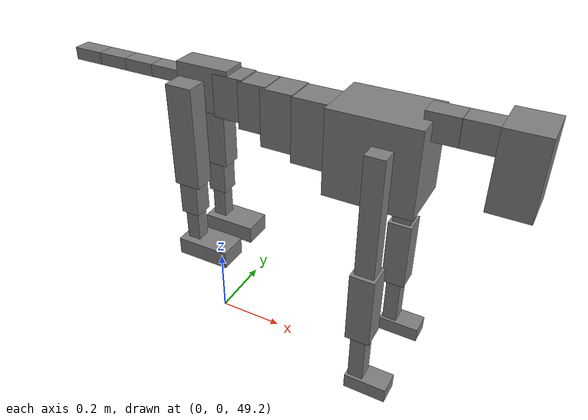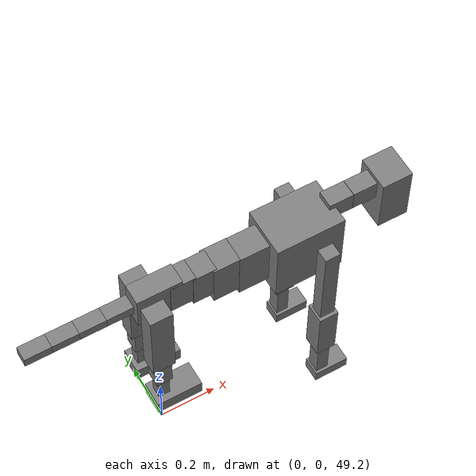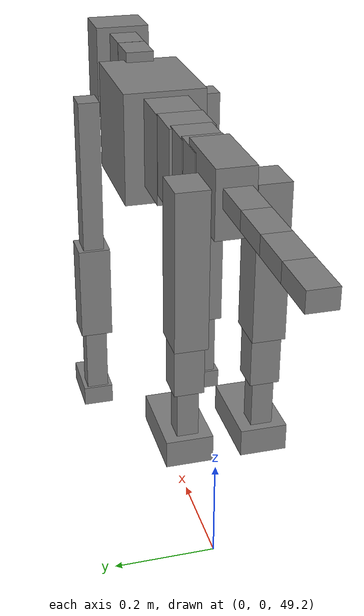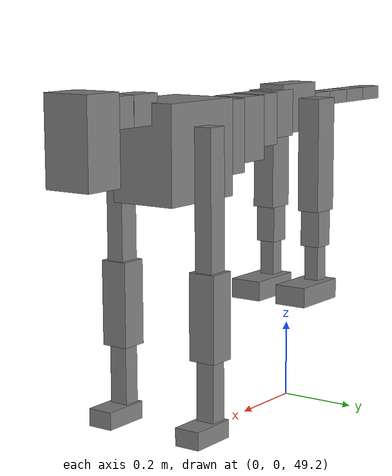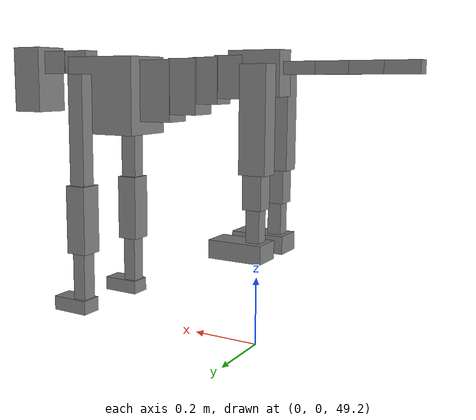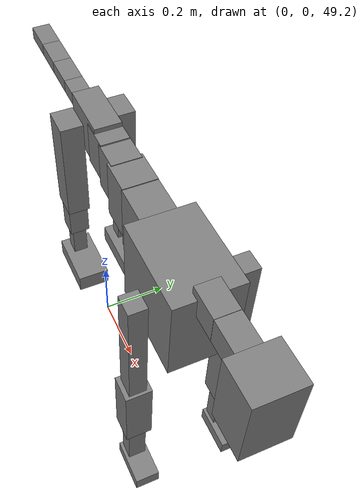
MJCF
<mujoco model="dog">

    <default>
        <joint armature="0.02" stiffness="1" damping="0.2" limited="true"/>
        <geom condim="3" friction="1 0.05 0.05" margin="0.01"/>
        <motor ctrllimited="true" ctrlrange="-1.0 1.0" forcelimited="true" gear="50"/>
    </default>

    <compiler inertiafromgeom="true" angle="radian"/>

    <option timestep="0.016" iterations="50" tolerance="1e-10" solver="Newton" jacobian="dense" cone="pyramidal"/>

    <size nconmax="20000" njmax="60000" nstack="5000000"/>
    <visual>
        <map force="0.1" zfar="30"/>
        <rgba haze="0.15 0.25 0.35 1"/>
        <quality shadowsize="2048"/>
        <global offwidth="800" offheight="800"/>
    </visual>

    <asset>
        <texture type="skybox" builtin="gradient" rgb1="0.3 0.5 0.7" rgb2="0 0 0" width="512" height="512"/>
        <texture name="texplane" type="2d" builtin="checker" rgb1=".2 .3 .4" rgb2=".1 0.15 0.2" width="512" height="512"
                 mark="cross" markrgb=".8 .8 .8"/>
        <texture name="texgeom" type="cube" builtin="flat" mark="cross" width="127" height="1278" rgb1="0.8 0.6 0.4"
                 rgb2="0.8 0.6 0.4" markrgb="1 1 1" random="0.01"/>

        <material name="matplane" reflectance="0.3" texture="texplane" texrepeat="1 1" texuniform="true"/>
        <material name="matgeom" texture="texgeom" texuniform="true" rgba="0.8 0.6 .4 1"/>
    </asset>

    <worldbody>
        <geom name="floor" pos="0 0 0" size="0 0 .25" type="plane" material="matplane" condim="3"/>

        <light directional="false" diffuse=".2 .2 .2" specular="0 0 0" pos="0 0 5" dir="0 0 -1" castshadow="false"/>
        <light mode="targetbodycom" target="torso" directional="false" diffuse=".8 .8 .8" specular="0.3 0.3 0.3"
               pos="0 0 4.0" dir="0 0 -1"/>

        <body name="root" pos="0 0 50">
            <freejoint name="root_1"/>
            <geom type="box" pos="0 0 -0.02" size="0.0774  0.0358  0.063" density="2030"/>

            <body name="spine1" pos="0.054 0 0">
                <joint name="spine1_y" axis="0 1 0" range="0 0.7" limited="true"/>
                <geom type="box" pos="0.02375 0 -0.03" size="0.04375  0.0375  0.05985" density="2030"/>

                <body name="spine2" pos="0.0612 0 0">
                    <joint name="spine2_y" axis="0 1 0" range="-0.15 0.15" limited="true"/>
                    <geom type="box" pos="0.03555  0  -0.04" size="0.04055  0.039  0.06615" density="2030"/>

                    <body name="spine3" pos="0.0730 0 0">
                        <joint name="spine3_y" axis="0 1 0" range="-0.15 0.15" limited="true"/>
                        <geom type="box" pos="0.03555  0  -0.057" size="0.04555  0.0445  0.081" density="2030"/>

                        <body name="spine4" pos="0.0780 0 0">
                            <joint name="spine4_y" axis="0 1 0" range="-0.15 0.15" limited="true"/>
                            <geom type="box" pos="0.05265  0  -0.07" size="0.05265  0.045  0.09135" density="2030"/>

                            <body name="torso" pos="0.1082 0 0">
                                <joint name="torso_y" axis="0 1 0" range="-0.15 0.15" limited="true"/>
                                <geom type="box" pos="0.11925  0  -0.085" size="0.11925  0.085  0.11745"
                                      density="2030"/>

                                <body name="neck1" pos="0.2160  0   0.0180">
                                    <joint name="neck1_y" axis="0 1 0" range="-1.2  -1" limited="true"/>
                                    <geom type="box" pos="0.0423  0  0" size="0.0423  0.03  0.036" density="2325"/>

                                    <body name="neck2" pos="0.0853  0  0">
                                        <joint name="neck2_y" axis="0 1 0" range="0.1  0" limited="true"/>
                                        <geom type="box" pos="0.0423  0  0" size="0.0423  0.03  0.036" density="2325"/>

                                        <body name="head" pos="0.0853  0  0">
                                            <joint name="head_y" axis="0 1 0" range="-0.3  -0.2" limited="true"/>
                                            <geom type="box" pos="0.0531  0  -0.055" size="0.0531  0.06  0.1044"
                                                  density="4030"/>

                                        </body>
                                    </body>
                                </body>

                                <body name="front_shoulder" pos="0.156  0   -0.0480">
                                    <joint name="front_shoulder_y" axis="0 1 0" range="-1 1.5" limited="true"/>
                                    <geom type="box" pos="0 0.13 -0.1540" size="0.0265  0.0226  0.1807" density="1158"/>
                                    <geom type="box" pos="0 -0.13 -0.1540" size="0.0265  0.0226  0.1807"
                                          density="1158"/>

                                    <body name="front_elbow" pos="0  0  -0.3081">
                                        <joint name="front_elbow_y" axis="0 1 0" range="-2 0" limited="true"/>
                                        <geom type="box" pos="0 0.13 -0.1047" size="0.0339  0.0346  0.1047"
                                              density="1081"/>
                                        <geom type="box" pos="0 -0.13 -0.1047" size="0.0339  0.0346  0.1047"
                                              density="1081"/>

                                        <body name="front_wrist" pos="0  0  -0.2094">
                                            <joint name="front_wrist_y" axis="0 1 0" range="-0.2 0" limited="true"/>
                                            <geom type="box" pos="0 0.13 -0.0803" size="0.0214  0.0238  0.0934"
                                                  density="1664"/>
                                            <geom type="box" pos="0 -0.13 -0.0803" size="0.0214  0.0238  0.0934"
                                                  density="1664"/>

                                            <body name="front_finger_end" pos="0  0  -0.1605">
                                                <joint name="front_finger_y" axis="0 1 0" range="-0.4 1"
                                                       limited="true"/>
                                                <geom type="box" pos="0.0328  0.13  -0.0069"
                                                      size="0.0601  0.0328  0.0219" density="1515"/>
                                                <geom type="box" pos="0.0328  -0.13  -0.0069"
                                                      size="0.0601  0.0328  0.0219" density="1515"/>

                                            </body>

                                        </body>
                                    </body>
                                </body>

                            </body>
                        </body>
                    </body>
                </body>
            </body>

            <body name="back_hip" pos="-0.03 0 -0.018">
                <joint name="back_hip_y" axis="0 1 0" range="-1.5 0.3" limited="true"/>
                <geom type="box" pos="0 0.07 -0.1252" size="0.0387  0.0303  0.1480" density="1154"/>
                <geom type="box" pos="0 -0.07 -0.1252" size="0.0387  0.0303  0.1480" density="1154"/>

                <body name="back_knee" pos="0  0  -0.2503">
                    <joint name="back_knee_y" axis="0 1 0" range="0 2.8" limited="true"/>
                    <geom type="box" pos="0 0.07 -0.0510" size="0.0277  0.0273  0.0666" density="1227"/>
                    <geom type="box" pos="0 -0.07 -0.0510" size="0.0277  0.0273  0.0666" density="1227"/>

                    <body name="back_ankle" pos="0  0  -0.1021">
                        <joint name="back_ankle_y" axis="0 1 0" range="-2.2 0" limited="true"/>
                        <geom type="box" pos="0 0.07 -0.0606" size="0.0199  0.0199  0.0719" density="1284"/>
                        <geom type="box" pos="0 -0.07 -0.0606" size="0.0199  0.0199  0.0719" density="1284"/>

                        <body name="back_toe_end" pos="0  0  -0.1213">
                            <joint name="back_toe_y" axis="0 1 0" range="-0.4 1" limited="true"/>
                            <geom type="box" pos="0.0434  0.07  -0.0109" size="0.0796  0.0434  0.0259" density="1515"/>
                            <geom type="box" pos="0.0434  -0.07  -0.0109" size="0.0796  0.0434  0.0259" density="1515"/>

                        </body>
                    </body>
                </body>
            </body>

            <body name="tail1" pos="-0.074 0 -0.006">
                <joint name="tail1_y" axis="0 1 0" range="-0.2 0.2" limited="true"/>
                <geom type="box" pos="-0.0536  0  0" size="0.045  0.025  0.0175" density="1587"/>

                <body name="tail2" pos="-0.09 0 0">
                    <joint name="tail2_y" axis="0 1 0" range="-0.2 0.2" limited="true"/>
                    <geom type="box" pos="-0.0536  0  0" size="0.045  0.025  0.0175" density="1587"/>

                    <body name="tail3" pos="-0.09 0 0">
                        <joint name="tail3_y" axis="0 1 0" range="-0.2 0.2" limited="true"/>
                        <geom type="box" pos="-0.0536  0  0" size="0.045  0.025  0.0175" density="1587"/>

                        <body name="tail4" pos="-0.09 0 0">
                            <joint name="tail4_y" axis="0 1 0" range="-0.2 0.2" limited="true"/>
                            <geom type="box" pos="-0.0536  0  0" size="0.045  0.025  0.0175" density="1587"/>

                        </body>
                    </body>
                </body>
            </body>
        </body>
    </worldbody>

    <actuator>
        <motor joint="spine1_y" forcerange="-150 150     "/>
        <motor joint="spine2_y" forcerange="-150 150     "/>
        <motor joint="spine3_y" forcerange="-150 150     "/>
        <motor joint="spine4_y" forcerange="-150 150     "/>
        <motor joint="torso_y" forcerange="-150 150     "/>
        <motor joint="neck1_y" forcerange="-100 100       "/>
        <motor joint="neck2_y" forcerange="-100 100       "/>
        <motor joint="head_y" forcerange="-150 150       "/>
        <motor joint="front_shoulder_y" forcerange="-107.73 143.23"/>
        <motor joint="front_elbow_y" forcerange="-194.29 157.43"/>
        <motor joint="front_wrist_y" forcerange="-61.82 128.54"/>
        <motor joint="front_finger_y" forcerange="-57.85 76.92"/>
        <motor joint="back_hip_y" forcerange="-216.91 387.28"/>
        <motor joint="back_knee_y" forcerange="-294.38 303.29"/>
        <motor joint="back_angle_y" forcerange="-165.54 52.84"/>
        <motor joint="back_toe_y" forcerange="-133.13 134.15"/>
        <motor joint="tail1_y" forcerange="-50 50     "/>
        <motor joint="tail2_y" forcerange="-50 50     "/>
        <motor joint="tail3_y" forcerange="-50 50     "/>
        <motor joint="tail4_y" forcerange="-50 50     "/>
    </actuator>
</mujoco>
